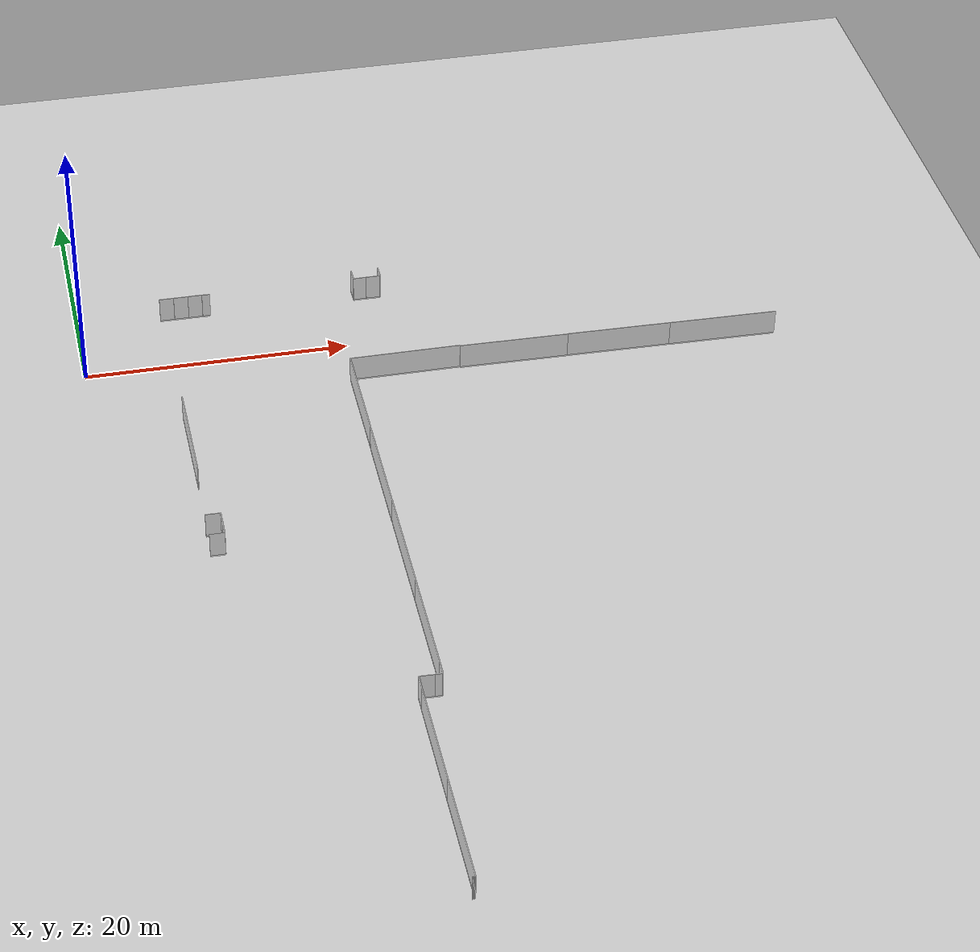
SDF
<sdf version="1.6">
 <world name="default">
  <model name="ground_plane">
   <static>1</static>
   <link name="link">
    <collision name="collision">
     <geometry><plane><normal>0 0 1</normal><size>100 100</size></plane></geometry>
     <surface><friction><ode><mu>100</mu><mu2>50</mu2></ode></friction></surface>
    </collision>
    <visual name="visual">
     <cast_shadows>0</cast_shadows>
     <geometry><plane><normal>0 0 1</normal><size>100 100</size></plane></geometry>
     <material>
      <script><uri>file://media/materials/scripts/gazebo.material</uri><name>Gazebo/Grey</name></script>
     </material>
    </visual>
    <velocity_decay><linear>0</linear><angular>0</angular></velocity_decay>
   </link>
  </model>
  <model name="full_wall_55_1100_2090">
   <link name="link">
    <inertial>
     <mass>50</mass>
     <inertia><ixx>1</ixx><ixy>0</ixy><ixz>0</ixz><iyy>1</iyy><iyz>0</iyz><izz>1</izz></inertia>
    </inertial>
    <visual name="bottom_frame">
     <pose>0 0 0.05 0 -0 0</pose>
     <geometry><box><size>0.055 1.1 0.1</size></box></geometry>
     <material>
      <script><uri>model://base_materials/color/scripts</uri><name>hsr_color/white</name></script>
     </material>
    </visual>
    <collision name="collision_bottom_frame">
     <pose>0 0 0.05 0 -0 0</pose>
     <geometry><box><size>0.055 1.1 0.1</size></box></geometry>
    </collision>
    <visual name="wall">
     <pose>0 0 1.095 0 -0 0</pose>
     <geometry><box><size>0.055 1.1 1.99</size></box></geometry>
     <material>
      <script>
       <uri>model://base_materials/wall/scripts</uri>
       <uri>model://base_materials/wall/textures</uri>
       <name>wall/white_noise</name>
      </script>
     </material>
    </visual>
    <collision name="collision_wall">
     <pose>0 0 1.095 0 -0 0</pose>
     <geometry><box><size>0.055 1.1 1.99</size></box></geometry>
    </collision>
    <velocity_decay><linear>0</linear><angular>0</angular></velocity_decay>
   </link>
   <static>1</static>
   <pose>6.96732 5.88036 0 0 -0 1.56492</pose>
  </model>
  <model name="full_wall_55_1100_2090_clone">
   <link name="link">
    <inertial>
     <mass>50</mass>
     <inertia><ixx>1</ixx><ixy>0</ixy><ixz>0</ixz><iyy>1</iyy><iyz>0</iyz><izz>1</izz></inertia>
    </inertial>
    <visual name="bottom_frame">
     <pose>0 0 0.05 0 -0 0</pose>
     <geometry><box><size>0.055 1.1 0.1</size></box></geometry>
     <material>
      <script><uri>model://base_materials/color/scripts</uri><name>hsr_color/white</name></script>
     </material>
    </visual>
    <collision name="collision_bottom_frame">
     <pose>0 0 0.05 0 -0 0</pose>
     <geometry><box><size>0.055 1.1 0.1</size></box></geometry>
    </collision>
    <visual name="wall">
     <pose>0 0 1.095 0 -0 0</pose>
     <geometry><box><size>0.055 1.1 1.99</size></box></geometry>
     <material>
      <script>
       <uri>model://base_materials/wall/scripts</uri>
       <uri>model://base_materials/wall/textures</uri>
       <name>wall/white_noise</name>
      </script>
     </material>
    </visual>
    <collision name="collision_wall">
     <pose>0 0 1.095 0 -0 0</pose>
     <geometry><box><size>0.055 1.1 1.99</size></box></geometry>
    </collision>
    <velocity_decay><linear>0</linear><angular>0</angular></velocity_decay>
   </link>
   <static>1</static>
   <pose>8.07351 5.87309 0 0 -0 1.56492</pose>
  </model>
  <model name="full_wall_55_1100_2090_clone_clone">
   <link name="link">
    <inertial>
     <mass>50</mass>
     <inertia><ixx>1</ixx><ixy>0</ixy><ixz>0</ixz><iyy>1</iyy><iyz>0</iyz><izz>1</izz></inertia>
    </inertial>
    <visual name="bottom_frame">
     <pose>0 0 0.05 0 -0 0</pose>
     <geometry><box><size>0.055 1.1 0.1</size></box></geometry>
     <material>
      <script><uri>model://base_materials/color/scripts</uri><name>hsr_color/white</name></script>
     </material>
    </visual>
    <collision name="collision_bottom_frame">
     <pose>0 0 0.05 0 -0 0</pose>
     <geometry><box><size>0.055 1.1 0.1</size></box></geometry>
    </collision>
    <visual name="wall">
     <pose>0 0 1.095 0 -0 0</pose>
     <geometry><box><size>0.055 1.1 1.99</size></box></geometry>
     <material>
      <script>
       <uri>model://base_materials/wall/scripts</uri>
       <uri>model://base_materials/wall/textures</uri>
       <name>wall/white_noise</name>
      </script>
     </material>
    </visual>
    <collision name="collision_wall">
     <pose>0 0 1.095 0 -0 0</pose>
     <geometry><box><size>0.055 1.1 1.99</size></box></geometry>
    </collision>
    <velocity_decay><linear>0</linear><angular>0</angular></velocity_decay>
   </link>
   <static>1</static>
   <pose>9.15161 5.86887 0 0 -0 1.56492</pose>
  </model>
  <model name="full_wall_55_600_2090_0">
   <link name="link">
    <inertial>
     <mass>50</mass>
     <inertia><ixx>1</ixx><ixy>0</ixy><ixz>0</ixz><iyy>1</iyy><iyz>0</iyz><izz>1</izz></inertia>
    </inertial>
    <visual name="bottom_frame">
     <pose>0 0 0.05 0 -0 0</pose>
     <geometry><box><size>0.055 0.6 0.1</size></box></geometry>
     <material>
      <script><uri>model://base_materials/color/scripts</uri><name>hsr_color/white</name></script>
     </material>
    </visual>
    <collision name="collision_bottom_frame">
     <pose>0 0 0.05 0 -0 0</pose>
     <geometry><box><size>0.055 0.6 0.1</size></box></geometry>
    </collision>
    <visual name="wall">
     <pose>0 0 1.095 0 -0 0</pose>
     <geometry><box><size>0.055 0.6 1.99</size></box></geometry>
     <material>
      <script>
       <uri>model://base_materials/wall/scripts</uri>
       <uri>model://base_materials/wall/textures</uri>
       <name>wall/white_noise</name>
      </script>
     </material>
    </visual>
    <collision name="collision_wall">
     <pose>0 0 1.095 0 -0 0</pose>
     <geometry><box><size>0.055 0.6 1.99</size></box></geometry>
    </collision>
    <velocity_decay><linear>0</linear><angular>0</angular></velocity_decay>
   </link>
   <static>1</static>
   <pose>10.0087 5.85043 0 0 0 -1.60946</pose>
  </model>
  <model name="full_wall_55_900_2090_clone_0_clone_clone_clone_0">
   <link name="link">
    <inertial>
     <mass>50</mass>
     <inertia><ixx>1</ixx><ixy>0</ixy><ixz>0</ixz><iyy>1</iyy><iyz>0</iyz><izz>1</izz></inertia>
    </inertial>
    <visual name="bottom_frame">
     <pose>0 0 0.05 0 -0 0</pose>
     <geometry><box><size>0.055 1.04 0.1</size></box></geometry>
     <material>
      <script><uri>model://base_materials/color/scripts</uri><name>hsr_color/white</name></script>
     </material>
    </visual>
    <collision name="collision_bottom_frame">
     <pose>0 0 0.05 0 -0 0</pose>
     <geometry><box><size>0.055 1.04 0.1</size></box></geometry>
    </collision>
    <visual name="wall">
     <pose>0 0 1.095 0 -0 0</pose>
     <geometry><box><size>0.055 1.04 1.99</size></box></geometry>
     <material>
      <script>
       <uri>model://base_materials/wall/scripts</uri>
       <uri>model://base_materials/wall/textures</uri>
       <name>wall/white_noise</name>
      </script>
     </material>
    </visual>
    <collision name="collision_wall">
     <pose>0 0 1.095 0 -0 0</pose>
     <geometry><box><size>0.055 1.04 1.99</size></box></geometry>
    </collision>
    <velocity_decay><linear>0</linear><angular>0</angular></velocity_decay>
   </link>
   <static>1</static>
   <pose>21.5488 6.25861 0 0 -0 0</pose>
  </model>
  <model name="full_wall_55_900_2090_clone_0_clone_clone_clone_0_clone">
   <link name="link">
    <inertial>
     <mass>50</mass>
     <inertia><ixx>1</ixx><ixy>0</ixy><ixz>0</ixz><iyy>1</iyy><iyz>0</iyz><izz>1</izz></inertia>
    </inertial>
    <visual name="bottom_frame">
     <pose>0 0 0.05 0 -0 0</pose>
     <geometry><box><size>0.055 1.04 0.1</size></box></geometry>
     <material>
      <script><uri>model://base_materials/color/scripts</uri><name>hsr_color/white</name></script>
     </material>
    </visual>
    <collision name="collision_bottom_frame">
     <pose>0 0 0.05 0 -0 0</pose>
     <geometry><box><size>0.055 1.04 0.1</size></box></geometry>
    </collision>
    <visual name="wall">
     <pose>0 0 1.095 0 -0 0</pose>
     <geometry><box><size>0.055 1.04 1.99</size></box></geometry>
     <material>
      <script>
       <uri>model://base_materials/wall/scripts</uri>
       <uri>model://base_materials/wall/textures</uri>
       <name>wall/white_noise</name>
      </script>
     </material>
    </visual>
    <collision name="collision_wall">
     <pose>0 0 1.095 0 -0 0</pose>
     <geometry><box><size>0.055 1.04 1.99</size></box></geometry>
    </collision>
    <velocity_decay><linear>0</linear><angular>0</angular></velocity_decay>
   </link>
   <static>1</static>
   <pose>22.0526 5.70247 0 0 -0 1.56924</pose>
  </model>
  <model name="full_wall_55_900_2090_clone_0_clone_clone_clone_0_clone_clone">
   <link name="link">
    <inertial>
     <mass>50</mass>
     <inertia><ixx>1</ixx><ixy>0</ixy><ixz>0</ixz><iyy>1</iyy><iyz>0</iyz><izz>1</izz></inertia>
    </inertial>
    <visual name="bottom_frame">
     <pose>0 0 0.05 0 -0 0</pose>
     <geometry><box><size>0.055 1.04 0.1</size></box></geometry>
     <material>
      <script><uri>model://base_materials/color/scripts</uri><name>hsr_color/white</name></script>
     </material>
    </visual>
    <collision name="collision_bottom_frame">
     <pose>0 0 0.05 0 -0 0</pose>
     <geometry><box><size>0.055 1.04 0.1</size></box></geometry>
    </collision>
    <visual name="wall">
     <pose>0 0 1.095 0 -0 0</pose>
     <geometry><box><size>0.055 1.04 1.99</size></box></geometry>
     <material>
      <script>
       <uri>model://base_materials/wall/scripts</uri>
       <uri>model://base_materials/wall/textures</uri>
       <name>wall/white_noise</name>
      </script>
     </material>
    </visual>
    <collision name="collision_wall">
     <pose>0 0 1.095 0 -0 0</pose>
     <geometry><box><size>0.055 1.04 1.99</size></box></geometry>
    </collision>
    <velocity_decay><linear>0</linear><angular>0</angular></velocity_decay>
   </link>
   <static>1</static>
   <pose>23.0627 5.69646 0 0 -0 1.56924</pose>
  </model>
  <model name="full_wall_55_900_2090_clone_0_clone_clone_clone_0_clone_1">
   <link name="link">
    <inertial>
     <mass>50</mass>
     <inertia><ixx>1</ixx><ixy>0</ixy><ixz>0</ixz><iyy>1</iyy><iyz>0</iyz><izz>1</izz></inertia>
    </inertial>
    <visual name="bottom_frame">
     <pose>0 0 0.05 0 -0 0</pose>
     <geometry><box><size>0.055 1.04 0.1</size></box></geometry>
     <material>
      <script><uri>model://base_materials/color/scripts</uri><name>hsr_color/white</name></script>
     </material>
    </visual>
    <collision name="collision_bottom_frame">
     <pose>0 0 0.05 0 -0 0</pose>
     <geometry><box><size>0.055 1.04 0.1</size></box></geometry>
    </collision>
    <visual name="wall">
     <pose>0 0 1.095 0 -0 0</pose>
     <geometry><box><size>0.055 1.04 1.99</size></box></geometry>
     <material>
      <script>
       <uri>model://base_materials/wall/scripts</uri>
       <uri>model://base_materials/wall/textures</uri>
       <name>wall/white_noise</name>
      </script>
     </material>
    </visual>
    <collision name="collision_wall">
     <pose>0 0 1.095 0 -0 0</pose>
     <geometry><box><size>0.055 1.04 1.99</size></box></geometry>
    </collision>
    <velocity_decay><linear>0</linear><angular>0</angular></velocity_decay>
   </link>
   <static>1</static>
   <pose>23.6522 6.20194 0 0 -0 0</pose>
  </model>
  <model name="full_wall_55_8295_2090_clone_clone_clone">
   <link name="link">
    <inertial>
     <mass>50</mass>
     <inertia><ixx>1</ixx><ixy>0</ixy><ixz>0</ixz><iyy>1</iyy><iyz>0</iyz><izz>1</izz></inertia>
    </inertial>
    <visual name="bottom_frame">
     <pose>0 0 0.05 0 -0 0</pose>
     <geometry><box><size>0.055 8.295 0.1</size></box></geometry>
     <material>
      <script><uri>model://base_materials/color/scripts</uri><name>hsr_color/white</name></script>
     </material>
    </visual>
    <collision name="collision_bottom_frame">
     <pose>0 0 0.05 0 -0 0</pose>
     <geometry><box><size>0.055 8.295 0.1</size></box></geometry>
    </collision>
    <visual name="wall">
     <pose>0 0 1.095 0 -0 0</pose>
     <geometry><box><size>0.055 8.295 1.99</size></box></geometry>
     <material>
      <script>
       <uri>model://base_materials/wall/scripts</uri>
       <uri>model://base_materials/wall/textures</uri>
       <name>wall/white_noise</name>
      </script>
     </material>
    </visual>
    <collision name="collision_wall">
     <pose>0 0 1.095 0 -0 0</pose>
     <geometry><box><size>0.055 8.295 1.99</size></box></geometry>
    </collision>
    <velocity_decay><linear>0</linear><angular>0</angular></velocity_decay>
   </link>
   <static>1</static>
   <pose>6.55865 -10.3562 0 0 -0 0</pose>
  </model>
  <model name="full_wall_55_8295_2090_clone_clone_0_clone_clone_0">
   <link name="link">
    <inertial>
     <mass>50</mass>
     <inertia><ixx>1</ixx><ixy>0</ixy><ixz>0</ixz><iyy>1</iyy><iyz>0</iyz><izz>1</izz></inertia>
    </inertial>
    <visual name="bottom_frame">
     <pose>0 0 0.05 0 -0 0</pose>
     <geometry><box><size>0.055 8.295 0.1</size></box></geometry>
     <material>
      <script><uri>model://base_materials/color/scripts</uri><name>hsr_color/white</name></script>
     </material>
    </visual>
    <collision name="collision_bottom_frame">
     <pose>0 0 0.05 0 -0 0</pose>
     <geometry><box><size>0.055 8.295 0.1</size></box></geometry>
    </collision>
    <visual name="wall">
     <pose>0 0 1.095 0 -0 0</pose>
     <geometry><box><size>0.055 8.295 1.99</size></box></geometry>
     <material>
      <script>
       <uri>model://base_materials/wall/scripts</uri>
       <uri>model://base_materials/wall/textures</uri>
       <name>wall/white_noise</name>
      </script>
     </material>
    </visual>
    <collision name="collision_wall">
     <pose>0 0 1.095 0 -0 0</pose>
     <geometry><box><size>0.055 8.295 1.99</size></box></geometry>
    </collision>
    <velocity_decay><linear>0</linear><angular>0</angular></velocity_decay>
   </link>
   <static>1</static>
   <pose>23.7503 -4.11299 0 0 -0 1.57079</pose>
  </model>
  <model name="full_wall_55_8295_2090_clone_clone_clone_0">
   <link name="link">
    <inertial>
     <mass>50</mass>
     <inertia><ixx>1</ixx><ixy>0</ixy><ixz>0</ixz><iyy>1</iyy><iyz>0</iyz><izz>1</izz></inertia>
    </inertial>
    <visual name="bottom_frame">
     <pose>0 0 0.05 0 -0 0</pose>
     <geometry><box><size>0.055 8.295 0.1</size></box></geometry>
     <material>
      <script><uri>model://base_materials/color/scripts</uri><name>hsr_color/white</name></script>
     </material>
    </visual>
    <collision name="collision_bottom_frame">
     <pose>0 0 0.05 0 -0 0</pose>
     <geometry><box><size>0.055 8.295 0.1</size></box></geometry>
    </collision>
    <visual name="wall">
     <pose>0 0 1.095 0 -0 0</pose>
     <geometry><box><size>0.055 8.295 1.99</size></box></geometry>
     <material>
      <script>
       <uri>model://base_materials/wall/scripts</uri>
       <uri>model://base_materials/wall/textures</uri>
       <name>wall/white_noise</name>
      </script>
     </material>
    </visual>
    <collision name="collision_wall">
     <pose>0 0 1.095 0 -0 0</pose>
     <geometry><box><size>0.055 8.295 1.99</size></box></geometry>
    </collision>
    <velocity_decay><linear>0</linear><angular>0</angular></velocity_decay>
   </link>
   <static>1</static>
   <pose>19.5325 -8.20779 0 0 -0 0</pose>
  </model>
  <model name="full_wall_55_8295_2090_clone_clone_clone_0_clone">
   <link name="link">
    <inertial>
     <mass>50</mass>
     <inertia><ixx>1</ixx><ixy>0</ixy><ixz>0</ixz><iyy>1</iyy><iyz>0</iyz><izz>1</izz></inertia>
    </inertial>
    <visual name="bottom_frame">
     <pose>0 0 0.05 0 -0 0</pose>
     <geometry><box><size>0.055 8.295 0.1</size></box></geometry>
     <material>
      <script><uri>model://base_materials/color/scripts</uri><name>hsr_color/white</name></script>
     </material>
    </visual>
    <collision name="collision_bottom_frame">
     <pose>0 0 0.05 0 -0 0</pose>
     <geometry><box><size>0.055 8.295 0.1</size></box></geometry>
    </collision>
    <visual name="wall">
     <pose>0 0 1.095 0 -0 0</pose>
     <geometry><box><size>0.055 8.295 1.99</size></box></geometry>
     <material>
      <script>
       <uri>model://base_materials/wall/scripts</uri>
       <uri>model://base_materials/wall/textures</uri>
       <name>wall/white_noise</name>
      </script>
     </material>
    </visual>
    <collision name="collision_wall">
     <pose>0 0 1.095 0 -0 0</pose>
     <geometry><box><size>0.055 8.295 1.99</size></box></geometry>
    </collision>
    <velocity_decay><linear>0</linear><angular>0</angular></velocity_decay>
   </link>
   <static>1</static>
   <pose>19.5224 -16.5014 0 0 -0 0</pose>
  </model>
  <model name="full_wall_55_8295_2090_clone_clone_clone_0_clone_clone">
   <link name="link">
    <inertial>
     <mass>50</mass>
     <inertia><ixx>1</ixx><ixy>0</ixy><ixz>0</ixz><iyy>1</iyy><iyz>0</iyz><izz>1</izz></inertia>
    </inertial>
    <visual name="bottom_frame">
     <pose>0 0 0.05 0 -0 0</pose>
     <geometry><box><size>0.055 8.295 0.1</size></box></geometry>
     <material>
      <script><uri>model://base_materials/color/scripts</uri><name>hsr_color/white</name></script>
     </material>
    </visual>
    <collision name="collision_bottom_frame">
     <pose>0 0 0.05 0 -0 0</pose>
     <geometry><box><size>0.055 8.295 0.1</size></box></geometry>
    </collision>
    <visual name="wall">
     <pose>0 0 1.095 0 -0 0</pose>
     <geometry><box><size>0.055 8.295 1.99</size></box></geometry>
     <material>
      <script>
       <uri>model://base_materials/wall/scripts</uri>
       <uri>model://base_materials/wall/textures</uri>
       <name>wall/white_noise</name>
      </script>
     </material>
    </visual>
    <collision name="collision_wall">
     <pose>0 0 1.095 0 -0 0</pose>
     <geometry><box><size>0.055 8.295 1.99</size></box></geometry>
    </collision>
    <velocity_decay><linear>0</linear><angular>0</angular></velocity_decay>
   </link>
   <static>1</static>
   <pose>19.5299 -24.8333 0 0 -0 0</pose>
  </model>
  <model name="full_wall_55_8295_2090_clone_clone_clone_0_clone_clone_clone">
   <link name="link">
    <inertial>
     <mass>50</mass>
     <inertia><ixx>1</ixx><ixy>0</ixy><ixz>0</ixz><iyy>1</iyy><iyz>0</iyz><izz>1</izz></inertia>
    </inertial>
    <visual name="bottom_frame">
     <pose>0 0 0.05 0 -0 0</pose>
     <geometry><box><size>0.055 8.295 0.1</size></box></geometry>
     <material>
      <script><uri>model://base_materials/color/scripts</uri><name>hsr_color/white</name></script>
     </material>
    </visual>
    <collision name="collision_bottom_frame">
     <pose>0 0 0.05 0 -0 0</pose>
     <geometry><box><size>0.055 8.295 0.1</size></box></geometry>
    </collision>
    <visual name="wall">
     <pose>0 0 1.095 0 -0 0</pose>
     <geometry><box><size>0.055 8.295 1.99</size></box></geometry>
     <material>
      <script>
       <uri>model://base_materials/wall/scripts</uri>
       <uri>model://base_materials/wall/textures</uri>
       <name>wall/white_noise</name>
      </script>
     </material>
    </visual>
    <collision name="collision_wall">
     <pose>0 0 1.095 0 -0 0</pose>
     <geometry><box><size>0.055 8.295 1.99</size></box></geometry>
    </collision>
    <velocity_decay><linear>0</linear><angular>0</angular></velocity_decay>
   </link>
   <static>1</static>
   <pose>19.5229 -33.1341 0 0 -0 0</pose>
  </model>
  <model name="full_wall_55_1100_2090_clone_1_clone_0_clone_0">
   <link name="link">
    <inertial>
     <mass>50</mass>
     <inertia><ixx>1</ixx><ixy>0</ixy><ixz>0</ixz><iyy>1</iyy><iyz>0</iyz><izz>1</izz></inertia>
    </inertial>
    <visual name="bottom_frame">
     <pose>0 0 0.05 0 -0 0</pose>
     <geometry><box><size>0.055 1.1 0.1</size></box></geometry>
     <material>
      <script><uri>model://base_materials/color/scripts</uri><name>hsr_color/white</name></script>
     </material>
    </visual>
    <collision name="collision_bottom_frame">
     <pose>0 0 0.05 0 -0 0</pose>
     <geometry><box><size>0.055 1.1 0.1</size></box></geometry>
    </collision>
    <visual name="wall">
     <pose>0 0 1.095 0 -0 0</pose>
     <geometry><box><size>0.055 1.1 1.99</size></box></geometry>
     <material>
      <script>
       <uri>model://base_materials/wall/scripts</uri>
       <uri>model://base_materials/wall/textures</uri>
       <name>wall/white_noise</name>
      </script>
     </material>
    </visual>
    <collision name="collision_wall">
     <pose>0 0 1.095 0 -0 0</pose>
     <geometry><box><size>0.055 1.1 1.99</size></box></geometry>
    </collision>
    <velocity_decay><linear>0</linear><angular>0</angular></velocity_decay>
   </link>
   <static>1</static>
   <pose>7.47267 -20.1844 0 0 -0 3.12985</pose>
  </model>
  <model name="full_wall_55_1100_2090_clone_1_clone_0_clone_0_clone">
   <link name="link">
    <inertial>
     <mass>50</mass>
     <inertia><ixx>1</ixx><ixy>0</ixy><ixz>0</ixz><iyy>1</iyy><iyz>0</iyz><izz>1</izz></inertia>
    </inertial>
    <visual name="bottom_frame">
     <pose>0 0 0.05 0 -0 0</pose>
     <geometry><box><size>0.055 1.1 0.1</size></box></geometry>
     <material>
      <script><uri>model://base_materials/color/scripts</uri><name>hsr_color/white</name></script>
     </material>
    </visual>
    <collision name="collision_bottom_frame">
     <pose>0 0 0.05 0 -0 0</pose>
     <geometry><box><size>0.055 1.1 0.1</size></box></geometry>
    </collision>
    <visual name="wall">
     <pose>0 0 1.095 0 -0 0</pose>
     <geometry><box><size>0.055 1.1 1.99</size></box></geometry>
     <material>
      <script>
       <uri>model://base_materials/wall/scripts</uri>
       <uri>model://base_materials/wall/textures</uri>
       <name>wall/white_noise</name>
      </script>
     </material>
    </visual>
    <collision name="collision_wall">
     <pose>0 0 1.095 0 -0 0</pose>
     <geometry><box><size>0.055 1.1 1.99</size></box></geometry>
    </collision>
    <velocity_decay><linear>0</linear><angular>0</angular></velocity_decay>
   </link>
   <static>1</static>
   <pose>7.461 -21.1867 0 0 -0 3.12783</pose>
  </model>
  <model name="full_wall_55_1100_2090_clone_1_clone_0_clone_0_clone_0">
   <link name="link">
    <inertial>
     <mass>50</mass>
     <inertia><ixx>1</ixx><ixy>0</ixy><ixz>0</ixz><iyy>1</iyy><iyz>0</iyz><izz>1</izz></inertia>
    </inertial>
    <visual name="bottom_frame">
     <pose>0 0 0.05 0 -0 0</pose>
     <geometry><box><size>0.055 1.1 0.1</size></box></geometry>
     <material>
      <script><uri>model://base_materials/color/scripts</uri><name>hsr_color/white</name></script>
     </material>
    </visual>
    <collision name="collision_bottom_frame">
     <pose>0 0 0.05 0 -0 0</pose>
     <geometry><box><size>0.055 1.1 0.1</size></box></geometry>
    </collision>
    <visual name="wall">
     <pose>0 0 1.095 0 -0 0</pose>
     <geometry><box><size>0.055 1.1 1.99</size></box></geometry>
     <material>
      <script>
       <uri>model://base_materials/wall/scripts</uri>
       <uri>model://base_materials/wall/textures</uri>
       <name>wall/white_noise</name>
      </script>
     </material>
    </visual>
    <collision name="collision_wall">
     <pose>0 0 1.095 0 -0 0</pose>
     <geometry><box><size>0.055 1.1 1.99</size></box></geometry>
    </collision>
    <velocity_decay><linear>0</linear><angular>0</angular></velocity_decay>
   </link>
   <static>1</static>
   <pose>6.90656 -19.6554 0 0 -0 1.55651</pose>
  </model>
  <model name="full_wall_55_1100_2090_clone_1_clone_0_clone_0_clone_0_clone">
   <link name="link">
    <inertial>
     <mass>50</mass>
     <inertia><ixx>1</ixx><ixy>0</ixy><ixz>0</ixz><iyy>1</iyy><iyz>0</iyz><izz>1</izz></inertia>
    </inertial>
    <visual name="bottom_frame">
     <pose>0 0 0.05 0 -0 0</pose>
     <geometry><box><size>0.055 1.1 0.1</size></box></geometry>
     <material>
      <script><uri>model://base_materials/color/scripts</uri><name>hsr_color/white</name></script>
     </material>
    </visual>
    <collision name="collision_bottom_frame">
     <pose>0 0 0.05 0 -0 0</pose>
     <geometry><box><size>0.055 1.1 0.1</size></box></geometry>
    </collision>
    <visual name="wall">
     <pose>0 0 1.095 0 -0 0</pose>
     <geometry><box><size>0.055 1.1 1.99</size></box></geometry>
     <material>
      <script>
       <uri>model://base_materials/wall/scripts</uri>
       <uri>model://base_materials/wall/textures</uri>
       <name>wall/white_noise</name>
      </script>
     </material>
    </visual>
    <collision name="collision_wall">
     <pose>0 0 1.095 0 -0 0</pose>
     <geometry><box><size>0.055 1.1 1.99</size></box></geometry>
    </collision>
    <velocity_decay><linear>0</linear><angular>0</angular></velocity_decay>
   </link>
   <static>1</static>
   <pose>6.90972 -21.7558 0 0 -0 1.55651</pose>
  </model>
  <model name="full_wall_55_1100_2090_clone_1_clone_0_clone_0_clone_1">
   <link name="link">
    <inertial>
     <mass>50</mass>
     <inertia><ixx>1</ixx><ixy>0</ixy><ixz>0</ixz><iyy>1</iyy><iyz>0</iyz><izz>1</izz></inertia>
    </inertial>
    <visual name="bottom_frame">
     <pose>0 0 0.05 0 -0 0</pose>
     <geometry><box><size>0.055 1.1 0.1</size></box></geometry>
     <material>
      <script><uri>model://base_materials/color/scripts</uri><name>hsr_color/white</name></script>
     </material>
    </visual>
    <collision name="collision_bottom_frame">
     <pose>0 0 0.05 0 -0 0</pose>
     <geometry><box><size>0.055 1.1 0.1</size></box></geometry>
    </collision>
    <visual name="wall">
     <pose>0 0 1.095 0 -0 0</pose>
     <geometry><box><size>0.055 1.1 1.99</size></box></geometry>
     <material>
      <script>
       <uri>model://base_materials/wall/scripts</uri>
       <uri>model://base_materials/wall/textures</uri>
       <name>wall/white_noise</name>
      </script>
     </material>
    </visual>
    <collision name="collision_wall">
     <pose>0 0 1.095 0 -0 0</pose>
     <geometry><box><size>0.055 1.1 1.99</size></box></geometry>
    </collision>
    <velocity_decay><linear>0</linear><angular>0</angular></velocity_decay>
   </link>
   <static>1</static>
   <pose>19.5157 -37.8041 0 0 -0 3.12985</pose>
  </model>
  <model name="full_wall_55_1100_2090_clone_1_clone_0_clone_0_clone_1_clone">
   <link name="link">
    <inertial>
     <mass>50</mass>
     <inertia><ixx>1</ixx><ixy>0</ixy><ixz>0</ixz><iyy>1</iyy><iyz>0</iyz><izz>1</izz></inertia>
    </inertial>
    <visual name="bottom_frame">
     <pose>0 0 0.05 0 -0 0</pose>
     <geometry><box><size>0.055 1.1 0.1</size></box></geometry>
     <material>
      <script><uri>model://base_materials/color/scripts</uri><name>hsr_color/white</name></script>
     </material>
    </visual>
    <collision name="collision_bottom_frame">
     <pose>0 0 0.05 0 -0 0</pose>
     <geometry><box><size>0.055 1.1 0.1</size></box></geometry>
    </collision>
    <visual name="wall">
     <pose>0 0 1.095 0 -0 0</pose>
     <geometry><box><size>0.055 1.1 1.99</size></box></geometry>
     <material>
      <script>
       <uri>model://base_materials/wall/scripts</uri>
       <uri>model://base_materials/wall/textures</uri>
       <name>wall/white_noise</name>
      </script>
     </material>
    </visual>
    <collision name="collision_wall">
     <pose>0 0 1.095 0 -0 0</pose>
     <geometry><box><size>0.055 1.1 1.99</size></box></geometry>
    </collision>
    <velocity_decay><linear>0</linear><angular>0</angular></velocity_decay>
   </link>
   <static>1</static>
   <pose>18.9324 -38.358 0 0 -0 1.53777</pose>
  </model>
  <model name="full_wall_55_1100_2090_clone_1_clone_0_clone_0_clone_1_clone_clone">
   <link name="link">
    <inertial>
     <mass>50</mass>
     <inertia><ixx>1</ixx><ixy>0</ixy><ixz>0</ixz><iyy>1</iyy><iyz>0</iyz><izz>1</izz></inertia>
    </inertial>
    <visual name="bottom_frame">
     <pose>0 0 0.05 0 -0 0</pose>
     <geometry><box><size>0.055 1.1 0.1</size></box></geometry>
     <material>
      <script><uri>model://base_materials/color/scripts</uri><name>hsr_color/white</name></script>
     </material>
    </visual>
    <collision name="collision_bottom_frame">
     <pose>0 0 0.05 0 -0 0</pose>
     <geometry><box><size>0.055 1.1 0.1</size></box></geometry>
    </collision>
    <visual name="wall">
     <pose>0 0 1.095 0 -0 0</pose>
     <geometry><box><size>0.055 1.1 1.99</size></box></geometry>
     <material>
      <script>
       <uri>model://base_materials/wall/scripts</uri>
       <uri>model://base_materials/wall/textures</uri>
       <name>wall/white_noise</name>
      </script>
     </material>
    </visual>
    <collision name="collision_wall">
     <pose>0 0 1.095 0 -0 0</pose>
     <geometry><box><size>0.055 1.1 1.99</size></box></geometry>
    </collision>
    <velocity_decay><linear>0</linear><angular>0</angular></velocity_decay>
   </link>
   <static>1</static>
   <pose>18.4176 -38.3427 0 0 -0 1.53777</pose>
  </model>
  <model name="full_wall_55_1100_2090_clone_1_clone_0_clone_0_clone_1_clone_clone_clone">
   <link name="link">
    <inertial>
     <mass>50</mass>
     <inertia><ixx>1</ixx><ixy>0</ixy><ixz>0</ixz><iyy>1</iyy><iyz>0</iyz><izz>1</izz></inertia>
    </inertial>
    <visual name="bottom_frame">
     <pose>0 0 0.05 0 -0 0</pose>
     <geometry><box><size>0.055 1.1 0.1</size></box></geometry>
     <material>
      <script><uri>model://base_materials/color/scripts</uri><name>hsr_color/white</name></script>
     </material>
    </visual>
    <collision name="collision_bottom_frame">
     <pose>0 0 0.05 0 -0 0</pose>
     <geometry><box><size>0.055 1.1 0.1</size></box></geometry>
    </collision>
    <visual name="wall">
     <pose>0 0 1.095 0 -0 0</pose>
     <geometry><box><size>0.055 1.1 1.99</size></box></geometry>
     <material>
      <script>
       <uri>model://base_materials/wall/scripts</uri>
       <uri>model://base_materials/wall/textures</uri>
       <name>wall/white_noise</name>
      </script>
     </material>
    </visual>
    <collision name="collision_wall">
     <pose>0 0 1.095 0 -0 0</pose>
     <geometry><box><size>0.055 1.1 1.99</size></box></geometry>
    </collision>
    <velocity_decay><linear>0</linear><angular>0</angular></velocity_decay>
   </link>
   <static>1</static>
   <pose>17.8903 -38.9022 0 0 0 -0.01107</pose>
  </model>
  <model name="full_wall_55_8295_2090_clone_clone_clone_1">
   <link name="link">
    <inertial>
     <mass>50</mass>
     <inertia><ixx>1</ixx><ixy>0</ixy><ixz>0</ixz><iyy>1</iyy><iyz>0</iyz><izz>1</izz></inertia>
    </inertial>
    <visual name="bottom_frame">
     <pose>0 0 0.05 0 -0 0</pose>
     <geometry><box><size>0.055 8.295 0.1</size></box></geometry>
     <material>
      <script><uri>model://base_materials/color/scripts</uri><name>hsr_color/white</name></script>
     </material>
    </visual>
    <collision name="collision_bottom_frame">
     <pose>0 0 0.05 0 -0 0</pose>
     <geometry><box><size>0.055 8.295 0.1</size></box></geometry>
    </collision>
    <visual name="wall">
     <pose>0 0 1.095 0 -0 0</pose>
     <geometry><box><size>0.055 8.295 1.99</size></box></geometry>
     <material>
      <script>
       <uri>model://base_materials/wall/scripts</uri>
       <uri>model://base_materials/wall/textures</uri>
       <name>wall/white_noise</name>
      </script>
     </material>
    </visual>
    <collision name="collision_wall">
     <pose>0 0 1.095 0 -0 0</pose>
     <geometry><box><size>0.055 8.295 1.99</size></box></geometry>
    </collision>
    <velocity_decay><linear>0</linear><angular>0</angular></velocity_decay>
   </link>
   <static>1</static>
   <pose>17.879 -43.5994 0 0 -0 0</pose>
  </model>
  <model name="full_wall_55_8295_2090_clone_0_clone_0_clone_clone_1">
   <link name="link">
    <inertial>
     <mass>50</mass>
     <inertia><ixx>1</ixx><ixy>0</ixy><ixz>0</ixz><iyy>1</iyy><iyz>0</iyz><izz>1</izz></inertia>
    </inertial>
    <visual name="bottom_frame">
     <pose>0 0 0.05 0 -0 0</pose>
     <geometry><box><size>0.055 8.295 0.1</size></box></geometry>
     <material>
      <script><uri>model://base_materials/color/scripts</uri><name>hsr_color/white</name></script>
     </material>
    </visual>
    <collision name="collision_bottom_frame">
     <pose>0 0 0.05 0 -0 0</pose>
     <geometry><box><size>0.055 8.295 0.1</size></box></geometry>
    </collision>
    <visual name="wall">
     <pose>0 0 1.095 0 -0 0</pose>
     <geometry><box><size>0.055 8.295 1.99</size></box></geometry>
     <material>
      <script>
       <uri>model://base_materials/wall/scripts</uri>
       <uri>model://base_materials/wall/textures</uri>
       <name>wall/white_noise</name>
      </script>
     </material>
    </visual>
    <collision name="collision_wall">
     <pose>0 0 1.095 0 -0 0</pose>
     <geometry><box><size>0.055 8.295 1.99</size></box></geometry>
    </collision>
    <velocity_decay><linear>0</linear><angular>0</angular></velocity_decay>
   </link>
   <static>1</static>
   <pose>17.8796 -51.8958 0 0 -0 0</pose>
  </model>
  <model name="full_wall_55_8295_2090_clone_clone_0_clone_clone_0_clone">
   <link name="link">
    <inertial>
     <mass>50</mass>
     <inertia><ixx>1</ixx><ixy>0</ixy><ixz>0</ixz><iyy>1</iyy><iyz>0</iyz><izz>1</izz></inertia>
    </inertial>
    <visual name="bottom_frame">
     <pose>0 0 0.05 0 -0 0</pose>
     <geometry><box><size>0.055 8.295 0.1</size></box></geometry>
     <material>
      <script><uri>model://base_materials/color/scripts</uri><name>hsr_color/white</name></script>
     </material>
    </visual>
    <collision name="collision_bottom_frame">
     <pose>0 0 0.05 0 -0 0</pose>
     <geometry><box><size>0.055 8.295 0.1</size></box></geometry>
    </collision>
    <visual name="wall">
     <pose>0 0 1.095 0 -0 0</pose>
     <geometry><box><size>0.055 8.295 1.99</size></box></geometry>
     <material>
      <script>
       <uri>model://base_materials/wall/scripts</uri>
       <uri>model://base_materials/wall/textures</uri>
       <name>wall/white_noise</name>
      </script>
     </material>
    </visual>
    <collision name="collision_wall">
     <pose>0 0 1.095 0 -0 0</pose>
     <geometry><box><size>0.055 8.295 1.99</size></box></geometry>
    </collision>
    <velocity_decay><linear>0</linear><angular>0</angular></velocity_decay>
   </link>
   <static>1</static>
   <pose>32.0675 -4.25281 0 0 -0 1.55369</pose>
  </model>
  <model name="full_wall_55_8295_2090_clone_clone_0_clone_clone_0_clone_clone">
   <link name="link">
    <inertial>
     <mass>50</mass>
     <inertia><ixx>1</ixx><ixy>0</ixy><ixz>0</ixz><iyy>1</iyy><iyz>0</iyz><izz>1</izz></inertia>
    </inertial>
    <visual name="bottom_frame">
     <pose>0 0 0.05 0 -0 0</pose>
     <geometry><box><size>0.055 8.295 0.1</size></box></geometry>
     <material>
      <script><uri>model://base_materials/color/scripts</uri><name>hsr_color/white</name></script>
     </material>
    </visual>
    <collision name="collision_bottom_frame">
     <pose>0 0 0.05 0 -0 0</pose>
     <geometry><box><size>0.055 8.295 0.1</size></box></geometry>
    </collision>
    <visual name="wall">
     <pose>0 0 1.095 0 -0 0</pose>
     <geometry><box><size>0.055 8.295 1.99</size></box></geometry>
     <material>
      <script>
       <uri>model://base_materials/wall/scripts</uri>
       <uri>model://base_materials/wall/textures</uri>
       <name>wall/white_noise</name>
      </script>
     </material>
    </visual>
    <collision name="collision_wall">
     <pose>0 0 1.095 0 -0 0</pose>
     <geometry><box><size>0.055 8.295 1.99</size></box></geometry>
    </collision>
    <velocity_decay><linear>0</linear><angular>0</angular></velocity_decay>
   </link>
   <static>1</static>
   <pose>40.3291 -4.37645 0 0 -0 1.55369</pose>
  </model>
  <model name="wall_frame_55_55_2090_none_collision">
   <link name="link">
    <inertial>
     <mass>50</mass>
     <inertia><ixx>1</ixx><ixy>0</ixy><ixz>0</ixz><iyy>1</iyy><iyz>0</iyz><izz>1</izz></inertia>
    </inertial>
    <visual name="_frame">
     <pose>0 0 1.045 0 -0 0</pose>
     <geometry><box><size>0.055 0.055 2.09</size></box></geometry>
     <material>
      <script><uri>model://base_materials/color/scripts</uri><name>hsr_color/white</name></script>
     </material>
    </visual>
    <velocity_decay><linear>0</linear><angular>0</angular></velocity_decay>
   </link>
   <static>1</static>
   <pose>17.8248 -56.0131 0 0 -0 0</pose>
  </model>
  <model name="wall_frame_55_55_2090_none_collision_clone">
   <link name="link">
    <inertial>
     <mass>50</mass>
     <inertia><ixx>1</ixx><ixy>0</ixy><ixz>0</ixz><iyy>1</iyy><iyz>0</iyz><izz>1</izz></inertia>
    </inertial>
    <visual name="_frame">
     <pose>0 0 1.045 0 -0 0</pose>
     <geometry><box><size>0.055 0.055 2.09</size></box></geometry>
     <material>
      <script><uri>model://base_materials/color/scripts</uri><name>hsr_color/white</name></script>
     </material>
    </visual>
    <velocity_decay><linear>0</linear><angular>0</angular></velocity_decay>
   </link>
   <static>1</static>
   <pose>17.769 -56.0125 0 0 -0 0</pose>
  </model>
  <model name="wall_frame_55_55_2090_none_collision_clone_0">
   <link name="link">
    <inertial>
     <mass>50</mass>
     <inertia><ixx>1</ixx><ixy>0</ixy><ixz>0</ixz><iyy>1</iyy><iyz>0</iyz><izz>1</izz></inertia>
    </inertial>
    <visual name="_frame">
     <pose>0 0 1.045 0 -0 0</pose>
     <geometry><box><size>0.055 0.055 2.09</size></box></geometry>
     <material>
      <script><uri>model://base_materials/color/scripts</uri><name>hsr_color/white</name></script>
     </material>
    </visual>
    <velocity_decay><linear>0</linear><angular>0</angular></velocity_decay>
   </link>
   <static>1</static>
   <pose>17.712 -56.0143 0 0 -0 0</pose>
  </model>
  <model name="full_wall_55_8295_2090_clone_clone_0_clone_clone_0_clone_clone_clone">
   <link name="link">
    <inertial>
     <mass>50</mass>
     <inertia><ixx>1</ixx><ixy>0</ixy><ixz>0</ixz><iyy>1</iyy><iyz>0</iyz><izz>1</izz></inertia>
    </inertial>
    <visual name="bottom_frame">
     <pose>0 0 0.05 0 -0 0</pose>
     <geometry><box><size>0.055 8.295 0.1</size></box></geometry>
     <material>
      <script><uri>model://base_materials/color/scripts</uri><name>hsr_color/white</name></script>
     </material>
    </visual>
    <collision name="collision_bottom_frame">
     <pose>0 0 0.05 0 -0 0</pose>
     <geometry><box><size>0.055 8.295 0.1</size></box></geometry>
    </collision>
    <visual name="wall">
     <pose>0 0 1.095 0 -0 0</pose>
     <geometry><box><size>0.055 8.295 1.99</size></box></geometry>
     <material>
      <script>
       <uri>model://base_materials/wall/scripts</uri>
       <uri>model://base_materials/wall/textures</uri>
       <name>wall/white_noise</name>
      </script>
     </material>
    </visual>
    <collision name="collision_wall">
     <pose>0 0 1.095 0 -0 0</pose>
     <geometry><box><size>0.055 8.295 1.99</size></box></geometry>
    </collision>
    <velocity_decay><linear>0</linear><angular>0</angular></velocity_decay>
   </link>
   <static>1</static>
   <pose>48.3204 -4.52572 0 0 -0 1.55369</pose>
  </model>
 </world>
</sdf>
